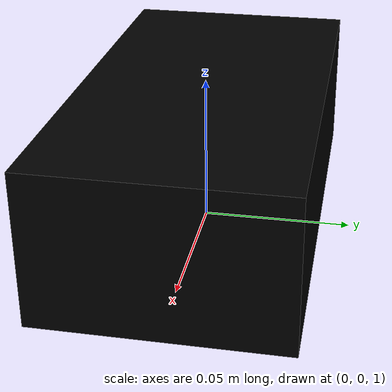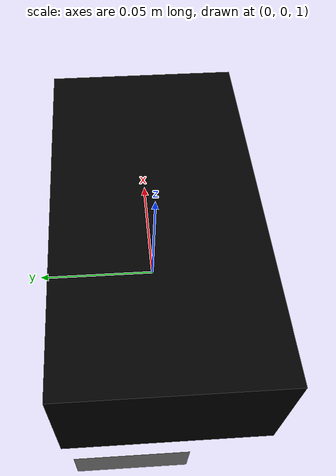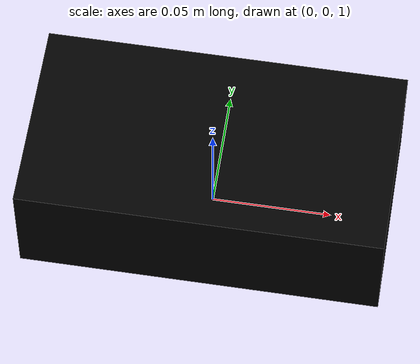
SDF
<?xml version="1.0"?>
<sdf version="1.7">
  <world name="humanoid_physics_world">
    <!-- Physics engine configuration for humanoid simulation -->
    <physics name="humanoid_physics" type="ode">
      <!-- Time step for physics simulation -->
      <max_step_size>0.001</max_step_size>
      <!-- Real-time update rate -->
      <real_time_update_rate>1000.0</real_time_update_rate>
      <!-- Real-time factor (1.0 = real-time, >1.0 = faster than real-time) -->
      <real_time_factor>1.0</real_time_factor>
      <!-- Gravity (Earth standard) -->
      <gravity>0 0 -9.8</gravity>

      <!-- ODE-specific solver parameters -->
      <ode>
        <solver>
          <!-- Quick solver for humanoid simulation -->
          <type>quick</type>
          <!-- Iterations for convergence -->
          <iters>10</iters>
          <!-- Successive Over Relaxation parameter -->
          <sor>1.3</sor>
        </solver>

        <constraints>
          <!-- Constraint Force Mixing parameter -->
          <cfm>0.0</cfm>
          <!-- Error Reduction Parameter -->
          <erp>0.2</erp>
          <!-- Maximum correcting velocity for contacts -->
          <contact_max_correcting_vel>100.0</contact_max_correcting_vel>
          <!-- Contact surface layer depth -->
          <contact_surface_layer>0.001</contact_surface_layer>
        </constraints>
      </ode>
    </physics>

    <!-- Lighting -->
    <light name="sun" type="directional">
      <cast_shadows>true</cast_shadows>
      <pose>0 0 10 0 0 0</pose>
      <diffuse>0.8 0.8 0.8 1</diffuse>
      <specular>0.2 0.2 0.2 1</specular>
      <attenuation>
        <range>1000</range>
        <constant>0.9</constant>
        <linear>0.01</linear>
        <quadratic>0.001</quadratic>
      </attenuation>
      <direction>-0.6 0.3 -0.9</direction>
    </light>

    <!-- Ground plane -->
    <model name="ground_plane">
      <static>true</static>
      <link name="link">
        <collision name="collision">
          <geometry>
            <plane>
              <normal>0 0 1</normal>
              <size>100 100</size>
            </plane>
          </geometry>
        </collision>
        <visual name="visual">
          <geometry>
            <plane>
              <normal>0 0 1</normal>
              <size>100 100</size>
            </plane>
          </geometry>
          <material>
            <ambient>0.8 0.8 0.8 1</ambient>
            <diffuse>0.8 0.8 0.8 1</diffuse>
            <specular>0.2 0.2 0.2 1</specular>
          </material>
        </visual>
      </link>
    </model>

    <!-- Optional: Add friction properties for humanoid feet -->
    <model name="humanoid_robot">
      <pose>0 0 1 0 0 0</pose>
      <static>false</static>

      <!-- Example link with custom friction -->
      <link name="left_foot">
        <pose>0 0 0.025 0 0 0</pose>
        <inertial>
          <mass>1.0</mass>
          <inertia>
            <ixx>0.001</ixx>
            <ixy>0.0</ixy>
            <ixz>0.0</ixz>
            <iyy>0.001</iyy>
            <iyz>0.0</iyz>
            <izz>0.001</izz>
          </inertia>
        </inertial>

        <visual name="foot_visual">
          <geometry>
            <box>
              <size>0.15 0.08 0.05</size>
            </box>
          </geometry>
          <material>
            <ambient>0 0 0 1</ambient>
            <diffuse>0 0 0 1</diffuse>
          </material>
        </visual>

        <collision name="foot_collision">
          <geometry>
            <box>
              <size>0.15 0.08 0.05</size>
            </box>
          </geometry>
        </collision>
      </link>

      <!-- Gazebo-specific friction configuration -->
      <gazebo reference="left_foot">
        <collision>
          <surface>
            <friction>
              <ode>
                <!-- High friction for stable footing -->
                <mu>1.0</mu>
                <mu2>1.0</mu2>
                <slip1>0.0</slip1>
                <slip2>0.0</slip2>
              </ode>
              <torsional>
                <!-- Torsional friction coefficient -->
                <coefficient>1.0</coefficient>
                <!-- Use patch radius for torsional friction -->
                <use_patch_radius>false</use_patch_radius>
                <!-- Surface radius for torsional friction -->
                <surface_radius>0.01</surface_radius>
              </torsional>
            </friction>

            <contact>
              <ode>
                <!-- Constraint Force Mixing -->
                <soft_cfm>0.0</soft_cfm>
                <!-- Error Reduction Parameter -->
                <soft_erp>0.2</soft_erp>
                <!-- Spring constant for contact stiffness -->
                <kp>1e+10</kp>
                <!-- Damping constant -->
                <kd>1.0</kd>
                <!-- Maximum velocity for contact correction -->
                <max_vel>100.0</max_vel>
                <!-- Minimum penetration depth -->
                <min_depth>0.001</min_depth>
              </ode>
            </contact>
          </surface>
        </collision>
      </gazebo>
    </model>

    <!-- Optional: Add obstacle for testing -->
    <model name="step_obstacle">
      <pose>2 0 0.05 0 0 0</pose>
      <static>true</static>
      <link name="link">
        <collision name="collision">
          <geometry>
            <box>
              <size>1 1 0.1</size>
            </box>
          </geometry>
        </collision>
        <visual name="visual">
          <geometry>
            <box>
              <size>1 1 0.1</size>
            </box>
          </geometry>
          <material>
            <ambient>0.5 0.5 0.5 1</ambient>
            <diffuse>0.5 0.5 0.5 1</diffuse>
          </material>
        </visual>
      </link>
    </model>

  </world>
</sdf>
